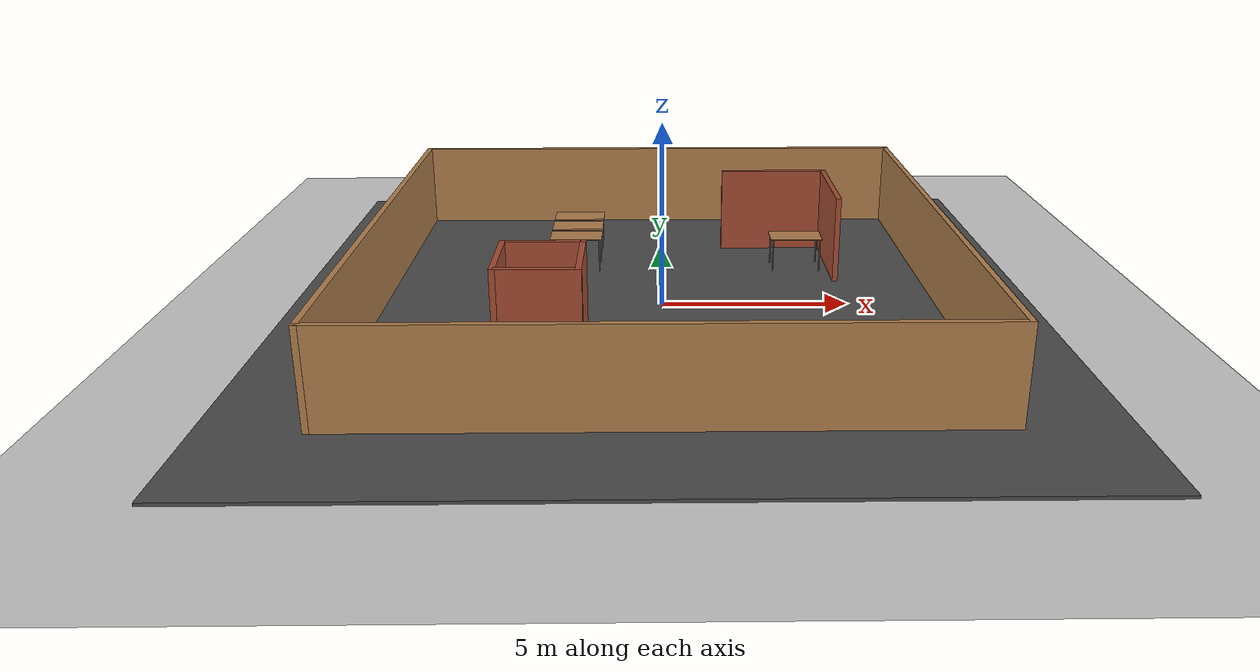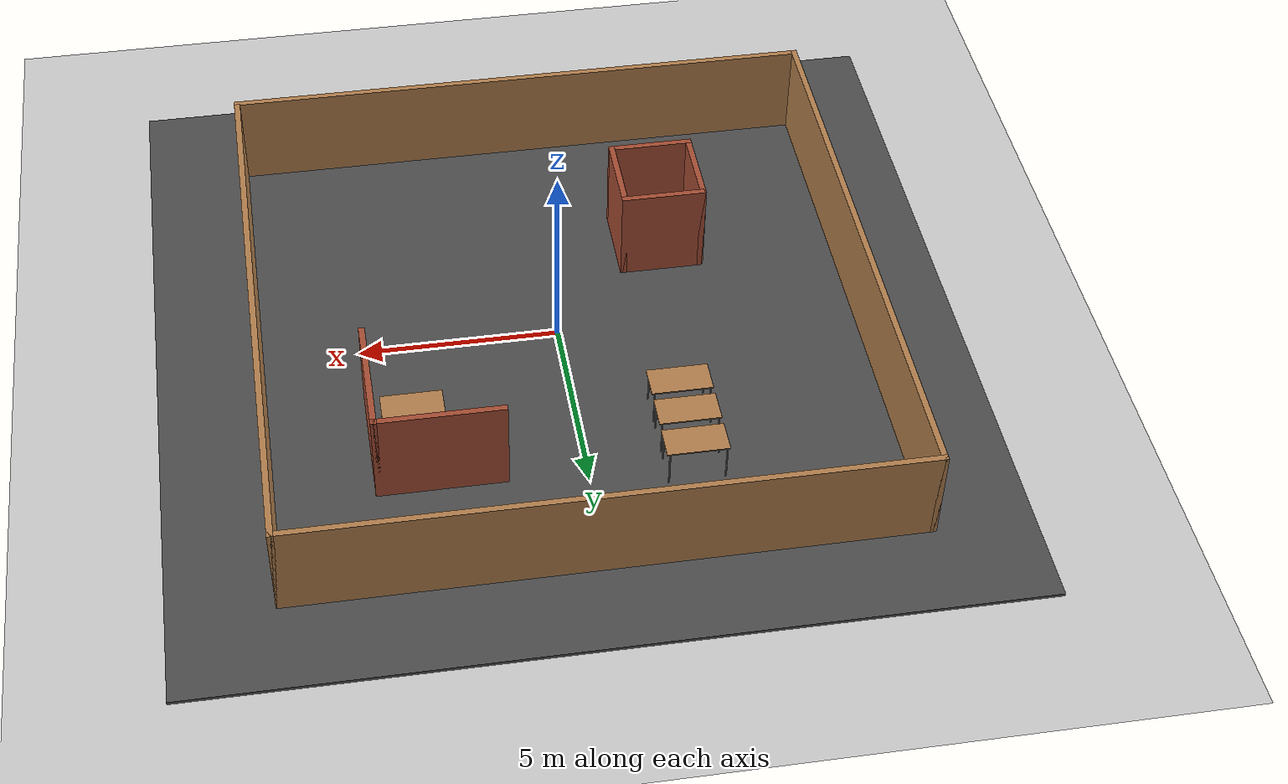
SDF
<sdf version="1.7">
 <world name="default">
  <light name="sun" type="directional">
   <pose>0 0 10 0 -0 0</pose>
   <diffuse>0.8 0.8 0.8 1</diffuse>
   <specular>0.2 0.2 0.2 1</specular>
   <attenuation>
    <range>1000</range>
    <constant>0.9</constant>
    <linear>0.01</linear>
    <quadratic>0.001</quadratic>
   </attenuation>
   <direction>-0.5 0.1 -0.9</direction>
   <spot><inner_angle>0</inner_angle><outer_angle>0</outer_angle><falloff>0</falloff></spot>
  </light>
  <model name="ground_plane">
   <static>1</static>
   <link name="link">
    <collision name="collision">
     <geometry><plane><normal>0 0 1</normal><size>100 100</size></plane></geometry>
     <surface>
      <contact><collide_bitmask>65535</collide_bitmask></contact>
      <friction><ode><mu>100</mu><mu2>50</mu2></ode></friction>
     </surface>
    </collision>
    <visual name="visual">
     <cast_shadows>0</cast_shadows>
     <geometry><plane><normal>0 0 1</normal><size>100 100</size></plane></geometry>
     <material>
      <script><uri>file://media/materials/scripts/gazebo.material</uri><name>Gazebo/Grey</name></script>
     </material>
    </visual>
   </link>
  </model>
  <gravity>0 0 -9.8</gravity>
  <magnetic_field>6e-06 2.3e-05 -4.2e-05</magnetic_field>
  <atmosphere type="adiabatic"/>
  <physics type="ode">
   <max_step_size>0.001</max_step_size>
   <real_time_factor>1</real_time_factor>
   <real_time_update_rate>1000</real_time_update_rate>
  </physics>
  <scene><ambient>0.4 0.4 0.4 1</ambient><background>0.7 0.7 0.7 1</background><shadows>1</shadows></scene>
  <spherical_coordinates>
   <surface_model>EARTH_WGS84</surface_model>
   <latitude_deg>0</latitude_deg>
   <longitude_deg>0</longitude_deg>
   <elevation>0</elevation>
   <heading_deg>0</heading_deg>
  </spherical_coordinates>
  <model name="15*15">
   <pose>-0.05246 0.214658 0 0 -0 0</pose>
   <link name="Wall_2">
    <collision name="Wall_2_Collision">
     <geometry><box><size>15.15 0.15 2.5</size></box></geometry>
     <pose>0 0 1.25 0 -0 0</pose>
    </collision>
    <visual name="Wall_2_Visual">
     <pose>0 0 1.25 0 -0 0</pose>
     <geometry><box><size>15.15 0.15 2.5</size></box></geometry>
     <material>
      <script><uri>file://media/materials/scripts/gazebo.material</uri><name>Gazebo/Wood</name></script>
      <ambient>1 1 1 1</ambient>
     </material>
     <meta><layer>0</layer></meta>
    </visual>
    <pose>7.5 0 0 0 -0 -1.5708</pose>
   </link>
   <link name="Wall_3">
    <collision name="Wall_3_Collision">
     <geometry><box><size>15.15 0.15 2.5</size></box></geometry>
     <pose>0 0 1.25 0 -0 0</pose>
    </collision>
    <visual name="Wall_3_Visual">
     <pose>0 0 1.25 0 -0 0</pose>
     <geometry><box><size>15.15 0.15 2.5</size></box></geometry>
     <material>
      <script><uri>file://media/materials/scripts/gazebo.material</uri><name>Gazebo/Wood</name></script>
      <ambient>1 1 1 1</ambient>
     </material>
     <meta><layer>0</layer></meta>
    </visual>
    <pose>0 -7.5 0 0 -0 3.14159</pose>
   </link>
   <link name="Wall_4">
    <collision name="Wall_4_Collision">
     <geometry><box><size>15.15 0.15 2.5</size></box></geometry>
     <pose>0 0 1.25 0 -0 0</pose>
    </collision>
    <visual name="Wall_4_Visual">
     <pose>0 0 1.25 0 -0 0</pose>
     <geometry><box><size>15.15 0.15 2.5</size></box></geometry>
     <material>
      <script><uri>file://media/materials/scripts/gazebo.material</uri><name>Gazebo/Wood</name></script>
      <ambient>1 1 1 1</ambient>
     </material>
     <meta><layer>0</layer></meta>
    </visual>
    <pose>-7.5 0 0 0 -0 1.5708</pose>
   </link>
   <link name="Wall_5">
    <collision name="Wall_5_Collision">
     <geometry><box><size>15.15 0.15 2.5</size></box></geometry>
     <pose>0 0 1.25 0 -0 0</pose>
    </collision>
    <visual name="Wall_5_Visual">
     <pose>0 0 1.25 0 -0 0</pose>
     <geometry><box><size>15.15 0.15 2.5</size></box></geometry>
     <material>
      <script><uri>file://media/materials/scripts/gazebo.material</uri><name>Gazebo/Wood</name></script>
      <ambient>1 1 1 1</ambient>
     </material>
     <meta><layer>0</layer></meta>
    </visual>
    <pose>0 7.5 0 0 -0 0</pose>
   </link>
   <static>1</static>
  </model>
  <model name="2*2">
   <pose>-3 -3 0 0 -0 0</pose>
   <link name="Wall_5">
    <collision name="Wall_5_Collision">
     <geometry><box><size>2.15 0.15 2.5</size></box></geometry>
     <pose>0 0 1.25 0 -0 0</pose>
    </collision>
    <visual name="Wall_5_Visual">
     <pose>0 0 1.25 0 -0 0</pose>
     <geometry><box><size>2.15 0.15 2.5</size></box></geometry>
     <material>
      <script><uri>file://media/materials/scripts/gazebo.material</uri><name>Gazebo/Bricks</name></script>
      <ambient>1 1 1 1</ambient>
     </material>
     <meta><layer>0</layer></meta>
    </visual>
    <pose>1 0 0 0 -0 -1.5708</pose>
   </link>
   <link name="Wall_6">
    <collision name="Wall_6_Collision">
     <geometry><box><size>2.15 0.15 2.5</size></box></geometry>
     <pose>0 0 1.25 0 -0 0</pose>
    </collision>
    <visual name="Wall_6_Visual">
     <pose>0 0 1.25 0 -0 0</pose>
     <geometry><box><size>2.15 0.15 2.5</size></box></geometry>
     <material>
      <script><uri>file://media/materials/scripts/gazebo.material</uri><name>Gazebo/Bricks</name></script>
      <ambient>1 1 1 1</ambient>
     </material>
     <meta><layer>0</layer></meta>
    </visual>
    <pose>0 -1 0 0 -0 3.14159</pose>
   </link>
   <link name="Wall_7">
    <collision name="Wall_7_Collision">
     <geometry><box><size>2.15 0.15 2.5</size></box></geometry>
     <pose>0 0 1.25 0 -0 0</pose>
    </collision>
    <visual name="Wall_7_Visual">
     <pose>0 0 1.25 0 -0 0</pose>
     <geometry><box><size>2.15 0.15 2.5</size></box></geometry>
     <material>
      <script><uri>file://media/materials/scripts/gazebo.material</uri><name>Gazebo/Bricks</name></script>
      <ambient>1 1 1 1</ambient>
     </material>
     <meta><layer>0</layer></meta>
    </visual>
    <pose>-1 0 0 0 -0 1.5708</pose>
   </link>
   <link name="Wall_8">
    <collision name="Wall_8_Collision">
     <geometry><box><size>2.15 0.15 2.5</size></box></geometry>
     <pose>0 0 1.25 0 -0 0</pose>
    </collision>
    <visual name="Wall_8_Visual">
     <pose>0 0 1.25 0 -0 0</pose>
     <geometry><box><size>2.15 0.15 2.5</size></box></geometry>
     <material>
      <script><uri>file://media/materials/scripts/gazebo.material</uri><name>Gazebo/Bricks</name></script>
      <ambient>1 1 1 1</ambient>
     </material>
     <meta><layer>0</layer></meta>
    </visual>
    <pose>0 1 0 0 -0 0</pose>
   </link>
   <static>1</static>
  </model>
  <model name="3*3you">
   <pose>2.48113 2.26743 0 0 -0 0</pose>
   <link name="Wall_0">
    <collision name="Wall_0_Collision">
     <geometry><box><size>3.15 0.15 2.5</size></box></geometry>
     <pose>0 0 1.25 0 -0 0</pose>
    </collision>
    <visual name="Wall_0_Visual">
     <pose>0 0 1.25 0 -0 0</pose>
     <geometry><box><size>3.15 0.15 2.5</size></box></geometry>
     <material>
      <script><uri>file://media/materials/scripts/gazebo.material</uri><name>Gazebo/Bricks</name></script>
      <ambient>1 1 1 1</ambient>
     </material>
     <meta><layer>0</layer></meta>
    </visual>
    <pose>0.9625 2.4625 0 0 -0 0</pose>
   </link>
   <link name="Wall_2">
    <collision name="Wall_2_Collision">
     <geometry><box><size>3.15 0.15 2.5</size></box></geometry>
     <pose>0 0 1.25 0 -0 0</pose>
    </collision>
    <visual name="Wall_2_Visual">
     <pose>0 0 1.25 0 -0 0</pose>
     <geometry><box><size>3.15 0.15 2.5</size></box></geometry>
     <material>
      <script><uri>file://media/materials/scripts/gazebo.material</uri><name>Gazebo/Bricks</name></script>
      <ambient>1 1 1 1</ambient>
     </material>
     <meta><layer>0</layer></meta>
    </visual>
    <pose>2.4625 0.9625 0 0 -0 -1.5708</pose>
   </link>
   <static>1</static>
  </model>
  <model name="asphalt_plane">
   <static>1</static>
   <link name="link">
    <collision name="collision"><geometry><box><size>20 20 0.1</size></box></geometry></collision>
    <visual name="visual">
     <cast_shadows>0</cast_shadows>
     <geometry><box><size>20 20 0.1</size></box></geometry>
     <material>
      <script>
       <uri>model://asphalt_plane/materials/scripts</uri>
       <uri>model://asphalt_plane/materials/textures</uri>
       <name>vrc/asphalt</name>
      </script>
     </material>
    </visual>
   </link>
  </model>
  <model name="table">
   <static>1</static>
   <link name="link">
    <collision name="surface">
     <pose>0 0 1 0 -0 0</pose>
     <geometry><box><size>1.5 0.8 0.03</size></box></geometry>
     <surface><friction><ode><mu>0.6</mu><mu2>0.6</mu2></ode></friction></surface>
    </collision>
    <visual name="visual1">
     <pose>0 0 1 0 -0 0</pose>
     <geometry><box><size>1.5 0.8 0.03</size></box></geometry>
     <material>
      <script><uri>file://media/materials/scripts/gazebo.material</uri><name>Gazebo/Wood</name></script>
     </material>
    </visual>
    <collision name="front_left_leg">
     <pose>0.68 0.38 0.5 0 -0 0</pose>
     <geometry><cylinder><radius>0.02</radius><length>1</length></cylinder></geometry>
    </collision>
    <visual name="front_left_leg">
     <pose>0.68 0.38 0.5 0 -0 0</pose>
     <geometry><cylinder><radius>0.02</radius><length>1</length></cylinder></geometry>
     <material>
      <script><uri>file://media/materials/scripts/gazebo.material</uri><name>Gazebo/Grey</name></script>
     </material>
    </visual>
    <collision name="front_right_leg">
     <pose>0.68 -0.38 0.5 0 -0 0</pose>
     <geometry><cylinder><radius>0.02</radius><length>1</length></cylinder></geometry>
    </collision>
    <visual name="front_right_leg">
     <pose>0.68 -0.38 0.5 0 -0 0</pose>
     <geometry><cylinder><radius>0.02</radius><length>1</length></cylinder></geometry>
     <material>
      <script><uri>file://media/materials/scripts/gazebo.material</uri><name>Gazebo/Grey</name></script>
     </material>
    </visual>
    <collision name="back_right_leg">
     <pose>-0.68 -0.38 0.5 0 -0 0</pose>
     <geometry><cylinder><radius>0.02</radius><length>1</length></cylinder></geometry>
    </collision>
    <visual name="back_right_leg">
     <pose>-0.68 -0.38 0.5 0 -0 0</pose>
     <geometry><cylinder><radius>0.02</radius><length>1</length></cylinder></geometry>
     <material>
      <script><uri>file://media/materials/scripts/gazebo.material</uri><name>Gazebo/Grey</name></script>
     </material>
    </visual>
    <collision name="back_left_leg">
     <pose>-0.68 0.38 0.5 0 -0 0</pose>
     <geometry><cylinder><radius>0.02</radius><length>1</length></cylinder></geometry>
    </collision>
    <visual name="back_left_leg">
     <pose>-0.68 0.38 0.5 0 -0 0</pose>
     <geometry><cylinder><radius>0.02</radius><length>1</length></cylinder></geometry>
     <material>
      <script><uri>file://media/materials/scripts/gazebo.material</uri><name>Gazebo/Grey</name></script>
     </material>
    </visual>
   </link>
   <pose>-2.5 5 0 0 -0 0</pose>
  </model>
  <model name="table_0">
   <static>1</static>
   <link name="link">
    <collision name="surface">
     <pose>0 0 1 0 -0 0</pose>
     <geometry><box><size>1.5 0.8 0.03</size></box></geometry>
     <surface><friction><ode><mu>0.6</mu><mu2>0.6</mu2></ode></friction></surface>
    </collision>
    <visual name="visual1">
     <pose>0 0 1 0 -0 0</pose>
     <geometry><box><size>1.5 0.8 0.03</size></box></geometry>
     <material>
      <script><uri>file://media/materials/scripts/gazebo.material</uri><name>Gazebo/Wood</name></script>
     </material>
    </visual>
    <collision name="front_left_leg">
     <pose>0.68 0.38 0.5 0 -0 0</pose>
     <geometry><cylinder><radius>0.02</radius><length>1</length></cylinder></geometry>
    </collision>
    <visual name="front_left_leg">
     <pose>0.68 0.38 0.5 0 -0 0</pose>
     <geometry><cylinder><radius>0.02</radius><length>1</length></cylinder></geometry>
     <material>
      <script><uri>file://media/materials/scripts/gazebo.material</uri><name>Gazebo/Grey</name></script>
     </material>
    </visual>
    <collision name="front_right_leg">
     <pose>0.68 -0.38 0.5 0 -0 0</pose>
     <geometry><cylinder><radius>0.02</radius><length>1</length></cylinder></geometry>
    </collision>
    <visual name="front_right_leg">
     <pose>0.68 -0.38 0.5 0 -0 0</pose>
     <geometry><cylinder><radius>0.02</radius><length>1</length></cylinder></geometry>
     <material>
      <script><uri>file://media/materials/scripts/gazebo.material</uri><name>Gazebo/Grey</name></script>
     </material>
    </visual>
    <collision name="back_right_leg">
     <pose>-0.68 -0.38 0.5 0 -0 0</pose>
     <geometry><cylinder><radius>0.02</radius><length>1</length></cylinder></geometry>
    </collision>
    <visual name="back_right_leg">
     <pose>-0.68 -0.38 0.5 0 -0 0</pose>
     <geometry><cylinder><radius>0.02</radius><length>1</length></cylinder></geometry>
     <material>
      <script><uri>file://media/materials/scripts/gazebo.material</uri><name>Gazebo/Grey</name></script>
     </material>
    </visual>
    <collision name="back_left_leg">
     <pose>-0.68 0.38 0.5 0 -0 0</pose>
     <geometry><cylinder><radius>0.02</radius><length>1</length></cylinder></geometry>
    </collision>
    <visual name="back_left_leg">
     <pose>-0.68 0.38 0.5 0 -0 0</pose>
     <geometry><cylinder><radius>0.02</radius><length>1</length></cylinder></geometry>
     <material>
      <script><uri>file://media/materials/scripts/gazebo.material</uri><name>Gazebo/Grey</name></script>
     </material>
    </visual>
   </link>
   <pose>-2.5 4 0 0 -0 0</pose>
  </model>
  <model name="table_1">
   <static>1</static>
   <link name="link">
    <collision name="surface">
     <pose>0 0 1 0 -0 0</pose>
     <geometry><box><size>1.5 0.8 0.03</size></box></geometry>
     <surface><friction><ode><mu>0.6</mu><mu2>0.6</mu2></ode></friction></surface>
    </collision>
    <visual name="visual1">
     <pose>0 0 1 0 -0 0</pose>
     <geometry><box><size>1.5 0.8 0.03</size></box></geometry>
     <material>
      <script><uri>file://media/materials/scripts/gazebo.material</uri><name>Gazebo/Wood</name></script>
     </material>
    </visual>
    <collision name="front_left_leg">
     <pose>0.68 0.38 0.5 0 -0 0</pose>
     <geometry><cylinder><radius>0.02</radius><length>1</length></cylinder></geometry>
    </collision>
    <visual name="front_left_leg">
     <pose>0.68 0.38 0.5 0 -0 0</pose>
     <geometry><cylinder><radius>0.02</radius><length>1</length></cylinder></geometry>
     <material>
      <script><uri>file://media/materials/scripts/gazebo.material</uri><name>Gazebo/Grey</name></script>
     </material>
    </visual>
    <collision name="front_right_leg">
     <pose>0.68 -0.38 0.5 0 -0 0</pose>
     <geometry><cylinder><radius>0.02</radius><length>1</length></cylinder></geometry>
    </collision>
    <visual name="front_right_leg">
     <pose>0.68 -0.38 0.5 0 -0 0</pose>
     <geometry><cylinder><radius>0.02</radius><length>1</length></cylinder></geometry>
     <material>
      <script><uri>file://media/materials/scripts/gazebo.material</uri><name>Gazebo/Grey</name></script>
     </material>
    </visual>
    <collision name="back_right_leg">
     <pose>-0.68 -0.38 0.5 0 -0 0</pose>
     <geometry><cylinder><radius>0.02</radius><length>1</length></cylinder></geometry>
    </collision>
    <visual name="back_right_leg">
     <pose>-0.68 -0.38 0.5 0 -0 0</pose>
     <geometry><cylinder><radius>0.02</radius><length>1</length></cylinder></geometry>
     <material>
      <script><uri>file://media/materials/scripts/gazebo.material</uri><name>Gazebo/Grey</name></script>
     </material>
    </visual>
    <collision name="back_left_leg">
     <pose>-0.68 0.38 0.5 0 -0 0</pose>
     <geometry><cylinder><radius>0.02</radius><length>1</length></cylinder></geometry>
    </collision>
    <visual name="back_left_leg">
     <pose>-0.68 0.38 0.5 0 -0 0</pose>
     <geometry><cylinder><radius>0.02</radius><length>1</length></cylinder></geometry>
     <material>
      <script><uri>file://media/materials/scripts/gazebo.material</uri><name>Gazebo/Grey</name></script>
     </material>
    </visual>
   </link>
   <pose>-2.5 3 0 0 -0 0</pose>
  </model>
  <model name="table_2">
   <static>1</static>
   <link name="link">
    <collision name="surface">
     <pose>0 0 1 0 -0 0</pose>
     <geometry><box><size>1.5 0.8 0.03</size></box></geometry>
     <surface><friction><ode><mu>0.6</mu><mu2>0.6</mu2></ode></friction></surface>
    </collision>
    <visual name="visual1">
     <pose>0 0 1 0 -0 0</pose>
     <geometry><box><size>1.5 0.8 0.03</size></box></geometry>
     <material>
      <script><uri>file://media/materials/scripts/gazebo.material</uri><name>Gazebo/Wood</name></script>
     </material>
    </visual>
    <collision name="front_left_leg">
     <pose>0.68 0.38 0.5 0 -0 0</pose>
     <geometry><cylinder><radius>0.02</radius><length>1</length></cylinder></geometry>
    </collision>
    <visual name="front_left_leg">
     <pose>0.68 0.38 0.5 0 -0 0</pose>
     <geometry><cylinder><radius>0.02</radius><length>1</length></cylinder></geometry>
     <material>
      <script><uri>file://media/materials/scripts/gazebo.material</uri><name>Gazebo/Grey</name></script>
     </material>
    </visual>
    <collision name="front_right_leg">
     <pose>0.68 -0.38 0.5 0 -0 0</pose>
     <geometry><cylinder><radius>0.02</radius><length>1</length></cylinder></geometry>
    </collision>
    <visual name="front_right_leg">
     <pose>0.68 -0.38 0.5 0 -0 0</pose>
     <geometry><cylinder><radius>0.02</radius><length>1</length></cylinder></geometry>
     <material>
      <script><uri>file://media/materials/scripts/gazebo.material</uri><name>Gazebo/Grey</name></script>
     </material>
    </visual>
    <collision name="back_right_leg">
     <pose>-0.68 -0.38 0.5 0 -0 0</pose>
     <geometry><cylinder><radius>0.02</radius><length>1</length></cylinder></geometry>
    </collision>
    <visual name="back_right_leg">
     <pose>-0.68 -0.38 0.5 0 -0 0</pose>
     <geometry><cylinder><radius>0.02</radius><length>1</length></cylinder></geometry>
     <material>
      <script><uri>file://media/materials/scripts/gazebo.material</uri><name>Gazebo/Grey</name></script>
     </material>
    </visual>
    <collision name="back_left_leg">
     <pose>-0.68 0.38 0.5 0 -0 0</pose>
     <geometry><cylinder><radius>0.02</radius><length>1</length></cylinder></geometry>
    </collision>
    <visual name="back_left_leg">
     <pose>-0.68 0.38 0.5 0 -0 0</pose>
     <geometry><cylinder><radius>0.02</radius><length>1</length></cylinder></geometry>
     <material>
      <script><uri>file://media/materials/scripts/gazebo.material</uri><name>Gazebo/Grey</name></script>
     </material>
    </visual>
   </link>
   <pose>3.92932 2.92062 0 0 -0 0</pose>
  </model>
 </world>
</sdf>
